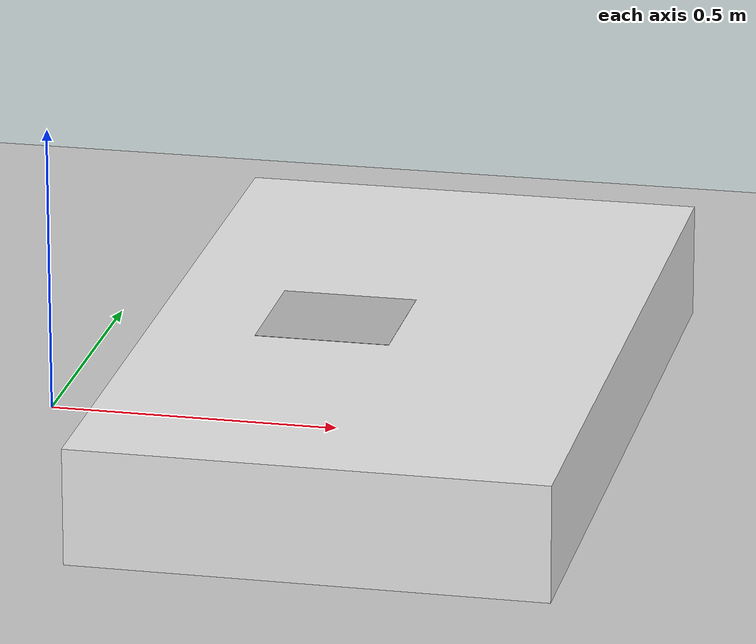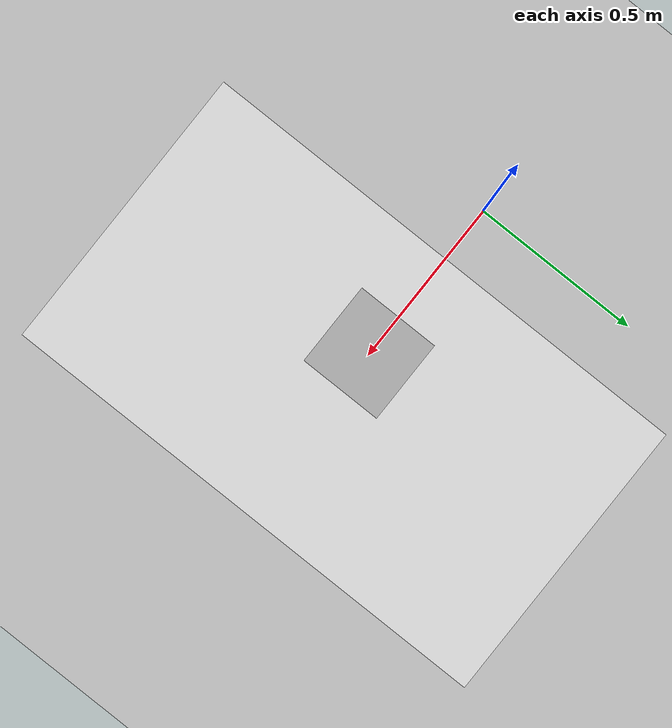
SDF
<?xml version="1.0" encoding="UTF-8" ?>
<sdf version="1.4">
  <world name="default">
    <!-- A global light source -->
    <include>
      <uri>model://sun</uri>
    </include>
    <!-- A ground plane -->
    <include>
      <uri>model://ground_plane</uri>
    </include>
    <!-- Our table. -->
    <model name='table'>
      <link name='main'>
        <pose>0 0 0 0 -0 0</pose>
          <collision name='collision'>
          <geometry>
            <box>
              <size>0.8 1.4 0.2</size>
            </box>
          </geometry>
          <max_contacts>10</max_contacts>
          <surface>
            <contact>
              <ode/>
            </contact>
            <bounce/>
            <friction>
              <torsional>
                <ode/>
              </torsional>
              <ode/>
            </friction>
          </surface>
        </collision>
        <visual name='visual'>
          <geometry>
            <box>
              <size>0.8 1.4 0.2</size>
            </box>
          </geometry>
          <material>
            <script>
              <uri>file://media/materials/scripts/gazebo.material</uri>
              <name>Gazebo/White</name>
            </script>
          </material>
        </visual>
        <self_collide>0</self_collide>
        <enable_wind>0</enable_wind>
        <kinematic>0</kinematic>
      </link>
      <static>1</static>
      <pose>0.6 0 0.1 0 0 0</pose>
    </model>

    <!-- Apriltag -->
    <model name='apriltag'>
      <link name='main'>
        <pose>0 0 0 0 -0 0</pose>
        <visual name='visual'>
          <geometry>
            <box>
              <size>0.23 0.23 0.001</size>
            </box>
          </geometry>
          <material>
            <script>
              <uri>model://Apriltag36_11_00000/materials/scripts</uri>
              <uri>model://Apriltag36_11_00000/materials/textures</uri>
              <name>Apriltag36_11_00000</name>
            </script>
          </material>
        </visual>
        <self_collide>0</self_collide>
        <enable_wind>0</enable_wind>
        <kinematic>0</kinematic>
      </link>
      <static>1</static>
      <pose>0.5 -0.0 0.2 0 -0 0</pose>
    </model>

    <!-- Physics -->
    <physics type="ode">
      <gravity>0 0 -9.81</gravity>
      <ode>
        <solver>
          <type>quick</type>
          <iters>10</iters>
          <sor>1.3</sor>
        </solver>
        <constraints>
          <cfm>0.0</cfm>
          <erp>0.2</erp>
          <contact_max_correcting_vel>10</contact_max_correcting_vel>
          <contact_surface_layer>0.001</contact_surface_layer>
        </constraints>
      </ode>
      <max_step_size>0.001</max_step_size>
    </physics>
  </world>
</sdf>
